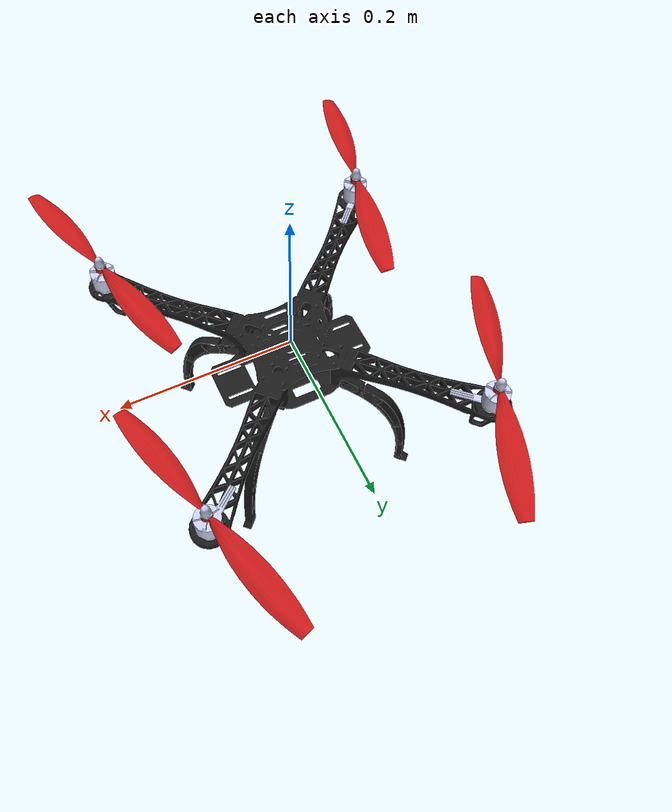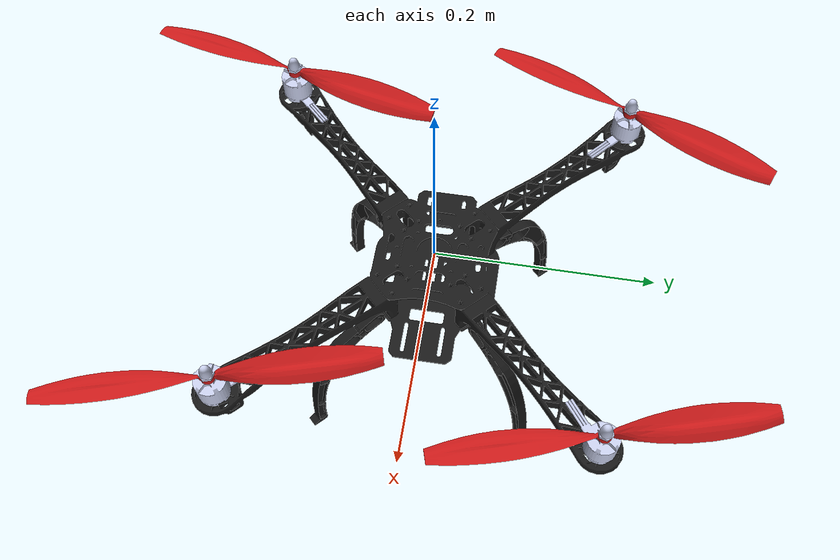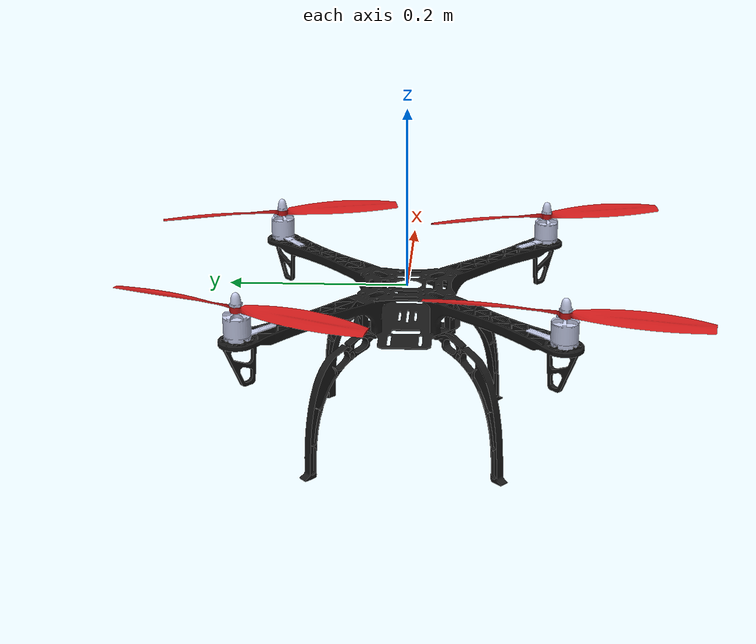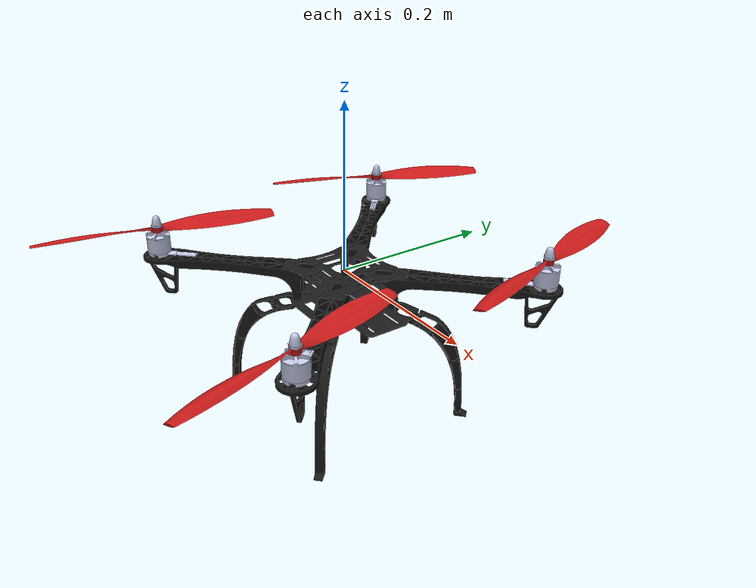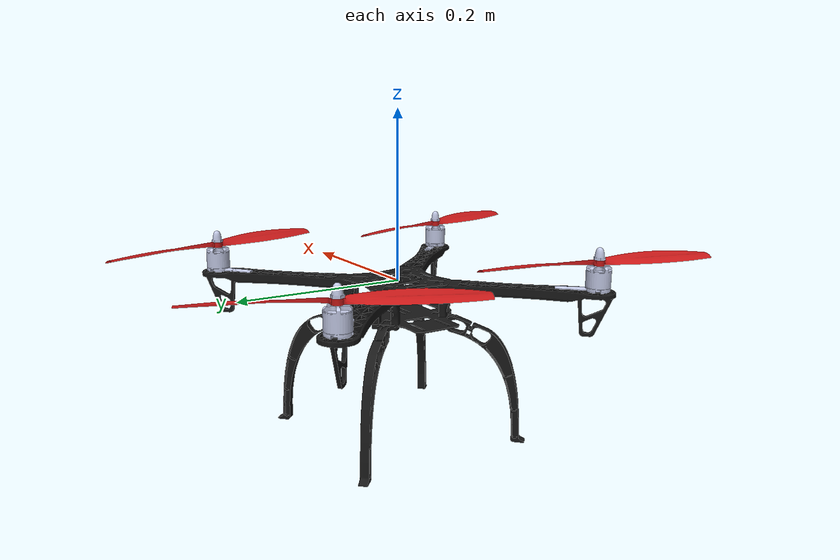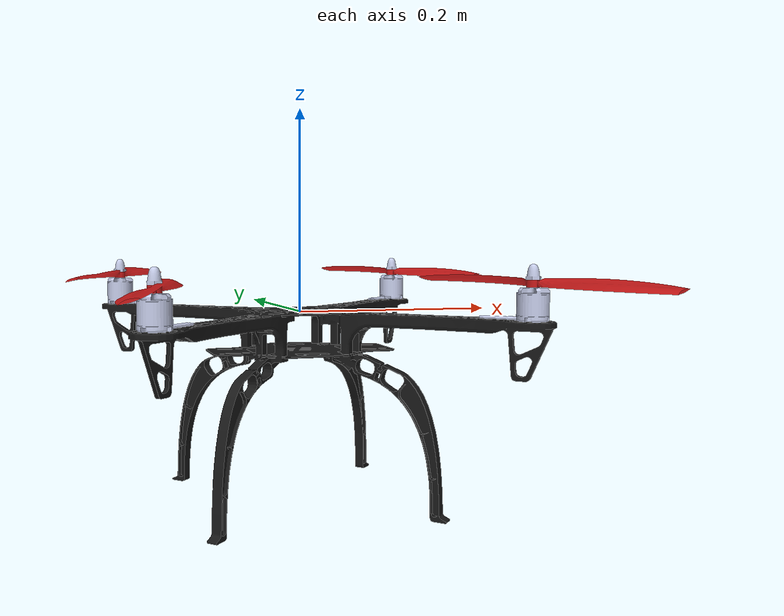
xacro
<?xml version="1.0" encoding="utf-8"?>
<robot name="drone" xmlns:xacro="http://www.ros.org/wiki/xacro">
<xacro:arg name="ros2_control_yaml" default=""/>

  <material name="red"><color rgba="0.8 0.1 0.1 1"/></material>
  <material name="black"><color rgba="0.1 0.1 0.1 1"/></material>
  <material name="grey"><color rgba="0.4 0.4 0.4 1"/></material>
  <material name="orange"><color rgba="1 0.5 0 1"/></material>

  <link
    name="base_link">
    <inertial>
      <origin
        xyz="-6.3212E-08 1.0539E-07 -0.026926"
        rpy="0 0 0" />
      <mass
        value="0.22736" />
      <inertia
        ixx="0.00051734"
        ixy="-1.9474E-10"
        ixz="-1.0163E-11"
        iyy="0.00054338"
        iyz="1.6895E-11"
        izz="0.00081393" />
    </inertial>
    <visual>
      <origin
        xyz="0 0 0"
        rpy="0 0 0" />
      <geometry>
        <mesh
          filename="$(find drone)/meshes/base_link.STL" />
      </geometry>
      <material name="black"><color rgba="0.1 0.1 0.1 1"/></material>
    </visual>
    <collision>
      <origin
        xyz="0 0 0"
        rpy="0 0 0" />
      <geometry>
        <mesh
          filename="$(find drone)/meshes/base_link.STL" />
      </geometry>
    </collision>
  </link>
  <link
    name="link_motor_front_right">
    <inertial>
      <origin
        xyz="0.0010075 -3.9076E-09 0.015546"
        rpy="0 0 0" />
      <mass
        value="0.13627" />
      <inertia
        ixx="1.329E-05"
        ixy="-5.3887E-14"
        ixz="-9.9406E-08"
        iyy="1.3437E-05"
        iyz="3.8342E-12"
        izz="1.168E-05" />
    </inertial>
    <visual>
      <origin
        xyz="0 0 0"
        rpy="0 0 0" />
      <geometry>
        <mesh
          filename="$(find drone)/meshes/link_motor_front_right.STL" />
      </geometry>
      <material
        name="">
        <color
          rgba="0.79216 0.81961 0.93333 1" />
      </material>
    </visual>
    <collision>
      <origin
        xyz="0 0 0"
        rpy="0 0 0" />
      <geometry>
        <mesh
          filename="$(find drone)/meshes/link_motor_front_right.STL" />
      </geometry>
    </collision>
  </link>
  <joint
    name="joint_motor_front_right"
    type="fixed">
    <origin
      xyz="0.16299 0.16299 0.00037705"
      rpy="0 0 -2.4843" />
    <parent
      link="base_link" />
    <child
      link="link_motor_front_right" />
  </joint>
  <link
    name="link_rotor_front_right">
    <inertial>
      <origin
        xyz="4.81133938246003E-10 7.6710804375324E-11 0.00428252145554474"
        rpy="0 0 0" />
      <mass
        value="0.0792353968915999" />
      <inertia
        ixx="2.5935724876401E-06"
        ixy="1.20862914748296E-05"
        ixz="-9.09337907217878E-14"
        iyy="0.000567464564116891"
        iyz="-1.39488669935456E-14"
        izz="0.000569676063472002" />
    </inertial>
    <visual>
      <origin
        xyz="0 0 0"
        rpy="0 0 0" />
      <geometry>
        <mesh
          filename="$(find drone)/meshes/link_rotor_front_right.STL" />
      </geometry>
      <material name="red"><color rgba="0.8 0.1 0.1 1"/></material>
    </visual>
    <collision>
      <origin
        xyz="0 0 0"
        rpy="0 0 0" />
      <geometry>
        <mesh
          filename="$(find drone)/meshes/link_rotor_front_right.STL" />
      </geometry>
    </collision>
  </link>
  <joint
    name="joint_rotor_front_right"
    type="continuous">
    <origin
      xyz="0 0 0.029573"
      rpy="0 0 1.1957" />
    <parent
      link="link_motor_front_right" />
    <child
      link="link_rotor_front_right" />
    <axis
      xyz="0 0 1" />
  </joint>
  <link
    name="link_motor_front_left">
    <inertial>
      <origin
        xyz="0.0010075 -3.9076E-09 0.015546"
        rpy="0 0 0" />
      <mass
        value="0.13627" />
      <inertia
        ixx="1.329E-05"
        ixy="-5.3887E-14"
        ixz="-9.9406E-08"
        iyy="1.3437E-05"
        iyz="3.8342E-12"
        izz="1.168E-05" />
    </inertial>
    <visual>
      <origin
        xyz="0 0 0"
        rpy="0 0 0" />
      <geometry>
        <mesh
          filename="$(find drone)/meshes/link_motor_front_left.STL" />
      </geometry>
      <material
        name="">
        <color
          rgba="0.79216 0.81961 0.93333 1" />
      </material>
    </visual>
    <collision>
      <origin
        xyz="0 0 0"
        rpy="0 0 0" />
      <geometry>
        <mesh
          filename="$(find drone)/meshes/link_motor_front_left.STL" />
      </geometry>
    </collision>
  </link>
  <joint
    name="joint_motor_front_left"
    type="fixed">
    <origin
      xyz="-0.16299 0.16299 0.00037705"
      rpy="0 0 -0.74053" />
    <parent
      link="base_link" />
    <child
      link="link_motor_front_left" />
  </joint>
  <link
    name="link_rotor_front_left">
    <inertial>
      <origin
        xyz="4.81135152552437E-10 7.67108876420508E-11 0.00428252430867754"
        rpy="0 0 0" />
      <mass
        value="0.0792351821581544" />
      <inertia
        ixx="2.59357248764002E-06"
        ixy="1.20862914748295E-05"
        ixz="-9.0933750992924E-14"
        iyy="0.000567464564116888"
        iyz="-1.39488582612234E-14"
        izz="0.000569676063471999" />
    </inertial>
    <visual>
      <origin
        xyz="0 0 0"
        rpy="0 0 0" />
      <geometry>
        <mesh
          filename="$(find drone)/meshes/link_rotor_front_left.STL" />
      </geometry>
      <material name="red"><color rgba="0.8 0.1 0.1 1"/></material>
    </visual>
    <collision>
      <origin
        xyz="0 0 0"
        rpy="0 0 0" />
      <geometry>
        <mesh
          filename="$(find drone)/meshes/link_rotor_front_left.STL" />
      </geometry>
    </collision>
  </link>
  <joint
    name="joint_rotor_front_left"
    type="continuous">
    <origin
      xyz="0 0 0.029573"
      rpy="0 0 -1.2207" />
    <parent
      link="link_motor_front_left" />
    <child
      link="link_rotor_front_left" />
    <axis
      xyz="0 0 1" />
  </joint>
  <link
    name="link_motor_rear_right">
    <inertial>
      <origin
        xyz="0.0010074998433014 -3.90756207946374E-09 0.0155460529897806"
        rpy="0 0 0" />
      <mass
        value="0.136265638019088" />
      <inertia
        ixx="1.32895448445532E-05"
        ixy="-5.38865259447981E-14"
        ixz="-9.94055138936586E-08"
        iyy="1.34373280396181E-05"
        iyz="3.83424096949605E-12"
        izz="1.16795382339127E-05" />
    </inertial>
    <visual>
      <origin
        xyz="0 0 0"
        rpy="0 0 0" />
      <geometry>
        <mesh
          filename="$(find drone)/meshes/link_motor_rear_right.STL" />
      </geometry>
      <material
        name="">
        <color
          rgba="0.792156862745098 0.819607843137255 0.933333333333333 1" />
      </material>
    </visual>
    <collision>
      <origin
        xyz="0 0 0"
        rpy="0 0 0" />
      <geometry>
        <mesh
          filename="$(find drone)/meshes/link_motor_rear_right.STL" />
      </geometry>
    </collision>
  </link>
  <joint
    name="joint_motor_rear_right"
    type="fixed">
    <origin
      xyz="0.16299 -0.16299 0.00037705"
      rpy="0 0 2.3138" />
    <parent
      link="base_link" />
    <child
      link="link_motor_rear_right" />
  </joint>
  <link
    name="link_rotor_rear_right">
    <inertial>
      <origin
        xyz="4.81133966001579E-10 7.67106378418703E-11 0.00428252145554474"
        rpy="0 0 0" />
      <mass
        value="0.0792353968916003" />
      <inertia
        ixx="2.59357248764002E-06"
        ixy="1.20862914748288E-05"
        ixz="-9.09336776816151E-14"
        iyy="0.000567464564116895"
        iyz="-1.39488613366009E-14"
        izz="0.000569676063472006" />
    </inertial>
    <visual>
      <origin
        xyz="0 0 0"
        rpy="0 0 0" />
      <geometry>
        <mesh
          filename="$(find drone)/meshes/link_rotor_rear_right.STL" />
      </geometry>
      <material name="red"><color rgba="0.8 0.1 0.1 1"/></material>
    </visual>
    <collision>
      <origin
        xyz="0 0 0"
        rpy="0 0 0" />
      <geometry>
        <mesh
          filename="$(find drone)/meshes/link_rotor_rear_right.STL" />
      </geometry>
    </collision>
  </link>
  <joint
    name="joint_rotor_rear_right"
    type="continuous">
    <origin
      xyz="0 0 0.029573"
      rpy="0 0 2.6807" />
    <parent
      link="link_motor_rear_right" />
    <child
      link="link_rotor_rear_right" />
    <axis
      xyz="0 0 1" />
  </joint>
  <link
    name="link_motor_rear_left">
    <inertial>
      <origin
        xyz="0.00100749984330151 -3.90756083046284E-09 0.0155460529897806"
        rpy="0 0 0" />
      <mass
        value="0.136265638019088" />
      <inertia
        ixx="1.32895448445532E-05"
        ixy="-5.38865297564463E-14"
        ixz="-9.94055138936587E-08"
        iyy="1.34373280396181E-05"
        iyz="3.83424097510764E-12"
        izz="1.16795382339127E-05" />
    </inertial>
    <visual>
      <origin
        xyz="0 0 0"
        rpy="0 0 0" />
      <geometry>
        <mesh
          filename="$(find drone)/meshes/link_motor_rear_left.STL" />
      </geometry>
      <material
        name="">
        <color
          rgba="0.792156862745098 0.819607843137255 0.933333333333333 1" />
      </material>
    </visual>
    <collision>
      <origin
        xyz="0 0 0"
        rpy="0 0 0" />
      <geometry>
        <mesh
          filename="$(find drone)/meshes/link_motor_rear_left.STL" />
      </geometry>
    </collision>
  </link>
  <joint
    name="joint_motor_rear_left"
    type="fixed">
    <origin
      xyz="-0.16299 -0.16299 0.00037705"
      rpy="0 0 0.80477" />
    <parent
      link="base_link" />
    <child
      link="link_motor_rear_left" />
  </joint>
  <link
    name="link_rotor_rear_left">
    <inertial>
      <origin
        xyz="4.81136019914175E-10 7.67109153976264E-11 0.00428252430867752"
        rpy="0 0 0" />
      <mass
        value="0.0792351821581553" />
      <inertia
        ixx="2.59357248764013E-06"
        ixy="1.20862914748303E-05"
        ixz="-9.09336086659056E-14"
        iyy="0.000567464564116896"
        iyz="-1.39488676252485E-14"
        izz="0.000569676063472007" />
    </inertial>
    <visual>
      <origin
        xyz="0 0 0"
        rpy="0 0 0" />
      <geometry>
        <mesh
          filename="$(find drone)/meshes/link_rotor_rear_left.STL" />
      </geometry>
      <material name="red"><color rgba="0.8 0.1 0.1 1"/></material>
    </visual>
    <collision>
      <origin
        xyz="0 0 0"
        rpy="0 0 0" />
      <geometry>
        <mesh
          filename="$(find drone)/meshes/link_rotor_rear_left.STL" />
      </geometry>
    </collision>
  </link>
  <joint
    name="joint_rotor_rear_left"
    type="continuous">
    <origin
      xyz="0 0 0.029573"
      rpy="0 0 0.54786" />
    <parent
      link="link_motor_rear_left" />
    <child
      link="link_rotor_rear_left" />
    <axis
      xyz="0 0 1" />
  </joint>
  <ros2_control name="quad_drone_system" type="system">
    <hardware>
      <plugin>gz_ros2_control/GazeboSimSystem</plugin>
    </hardware>
    <joint name="joint_rotor_front_left">
      <command_interface name="position"/>
      <command_interface name="velocity"/>
      <state_interface name="position"/>
      <state_interface name="velocity"/>
    </joint>
    <joint name="joint_rotor_front_right">
      <command_interface name="position"/>
      <state_interface name="position"/>
      <command_interface name="velocity"/>
      <state_interface name="velocity"/>
    </joint>
    <joint name="joint_rotor_rear_left">
      <command_interface name="position"/>
      <state_interface name="position"/>
      <command_interface name="velocity"/>
      <state_interface name="velocity"/>
    </joint>
    <joint name="joint_rotor_rear_right">
      <command_interface name="position"/>
      <state_interface name="position"/>
      <command_interface name="velocity"/>
      <state_interface name="velocity"/>
    </joint>
  </ros2_control>
  <gazebo>
    <plugin
        filename="gz_ros2_control-system"
        name="gz_ros2_control::GazeboSimROS2ControlPlugin">
      <parameters>$(arg ros2_control_yaml)</parameters>
    </plugin>
  </gazebo>
</robot>
